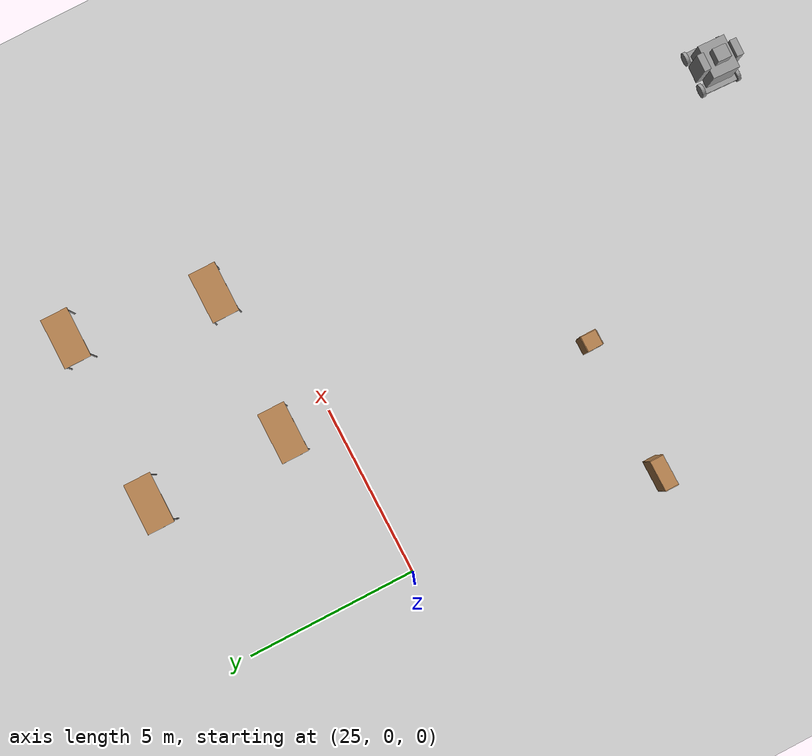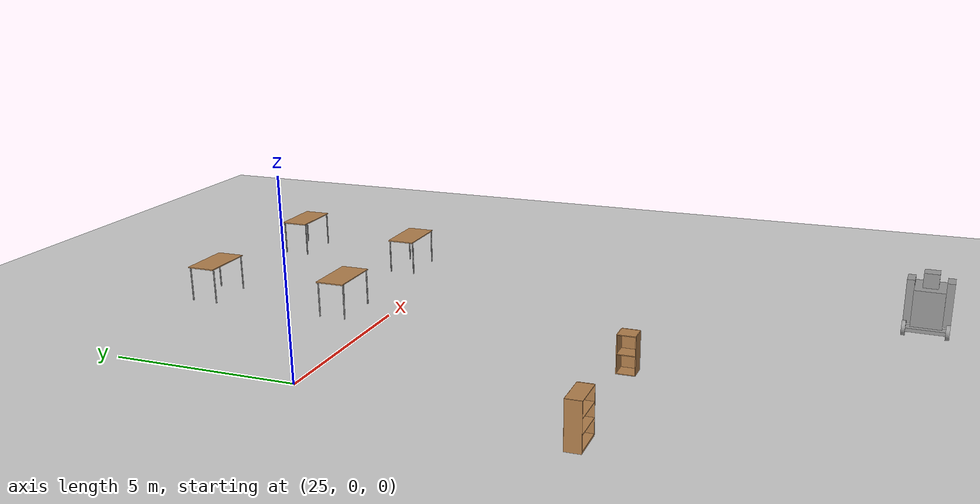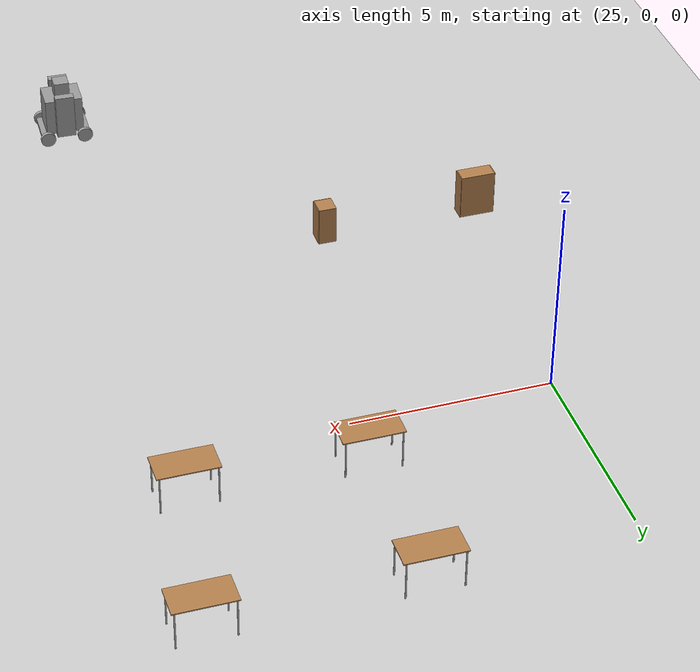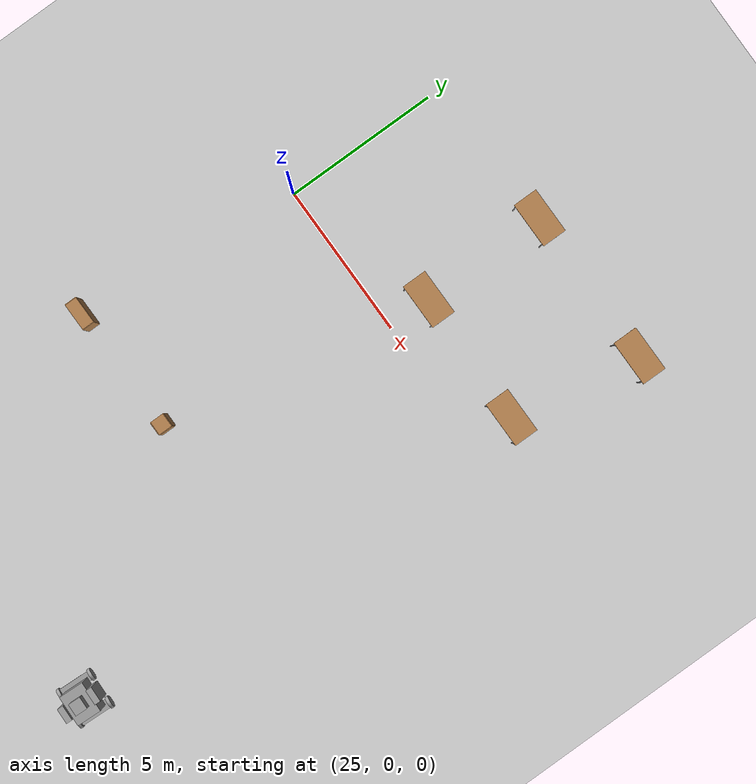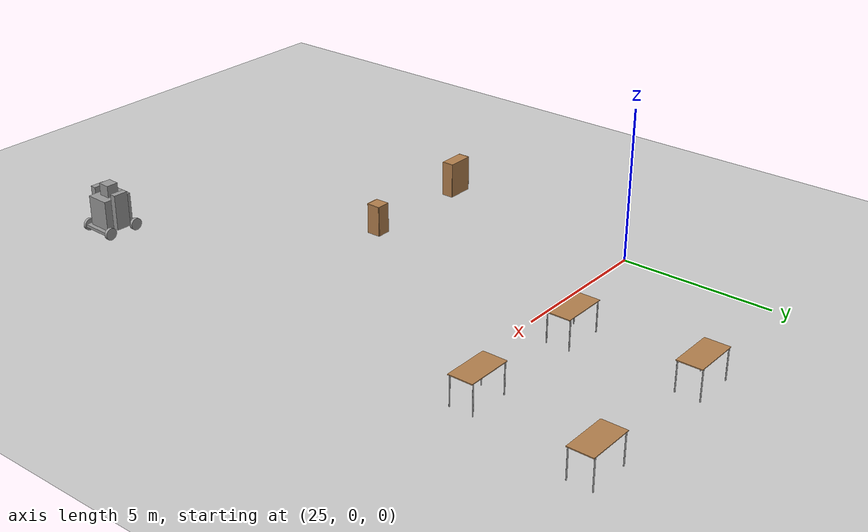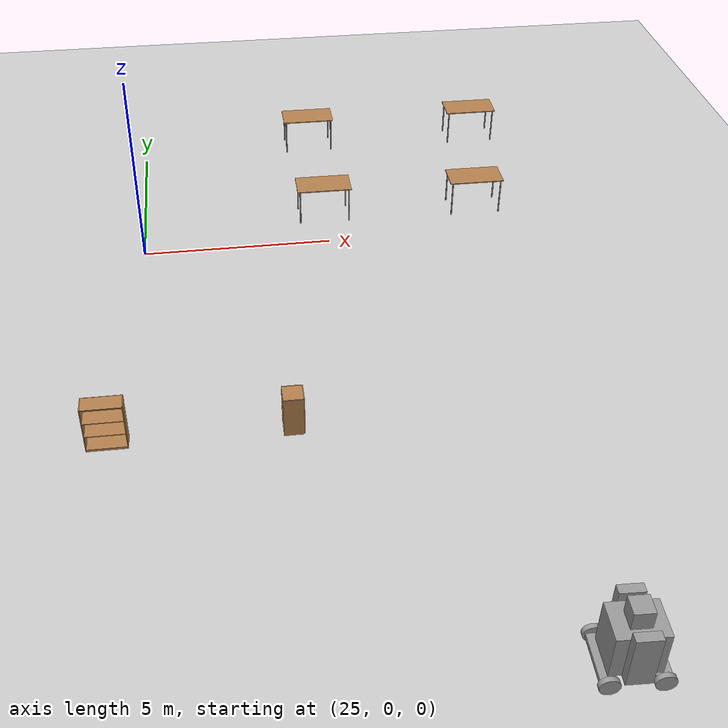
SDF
<sdf version="1.6">
 <world name="default">
  <model name="ground_plane">
   <static>1</static>
   <link name="link">
    <collision name="collision">
     <geometry><plane><normal>0 0 1</normal><size>100 100</size></plane></geometry>
     <surface>
      <contact><collide_bitmask>65535</collide_bitmask></contact>
      <friction><ode><mu>100</mu><mu2>50</mu2></ode></friction>
     </surface>
    </collision>
    <visual name="visual">
     <cast_shadows>0</cast_shadows>
     <geometry><plane><normal>0 0 1</normal><size>100 100</size></plane></geometry>
     <material>
      <script><uri>file://media/materials/scripts/gazebo.material</uri><name>Gazebo/Grey</name></script>
     </material>
    </visual>
   </link>
  </model>
  <model name="HumanoidRobot_0">
   <link name="link_0">
    <pose>-0.322222 -0.151781 0.006429 -0 -0 -0</pose>
    <inertial>
     <mass>1</mass>
     <inertia>
      <ixx>0.166667</ixx>
      <ixy>0</ixy>
      <ixz>0</ixz>
      <iyy>0.166667</iyy>
      <iyz>0</iyz>
      <izz>0.166667</izz>
     </inertia>
    </inertial>
    <visual name="visual">
     <geometry><box><size>0.3 1 0.1</size></box></geometry>
     <material>
      <lighting>1</lighting>
      <script><uri>file://media/materials/scripts/gazebo.material</uri><name>Gazebo/Grey</name></script>
      <shader type="pixel"><normal_map>__default__</normal_map></shader>
      <ambient>0.3 0.3 0.3 1</ambient>
      <diffuse>0.7 0.7 0.7 1</diffuse>
      <specular>0.01 0.01 0.01 1</specular>
      <emissive>0 0 0 1</emissive>
     </material>
    </visual>
    <collision name="collision">
     <geometry><box><size>0.3 1 0.1</size></box></geometry>
     <surface>
      <friction>
       <ode><mu>1</mu><mu2>1</mu2><fdir1>0 0 0</fdir1><slip1>0</slip1><slip2>0</slip2></ode>
       <torsional>
        <coefficient>1</coefficient>
        <patch_radius>0</patch_radius>
        <surface_radius>0</surface_radius>
        <use_patch_radius>1</use_patch_radius>
        <ode><slip>0</slip></ode>
       </torsional>
      </friction>
      <bounce><restitution_coefficient>0</restitution_coefficient><threshold>1e+06</threshold></bounce>
      <contact>
       <collide_without_contact>0</collide_without_contact>
       <collide_without_contact_bitmask>1</collide_without_contact_bitmask>
       <collide_bitmask>1</collide_bitmask>
       <ode>
        <soft_cfm>0</soft_cfm>
        <soft_erp>0.2</soft_erp>
        <kp>1e+13</kp>
        <kd>1</kd>
        <max_vel>0.01</max_vel>
        <min_depth>0</min_depth>
       </ode>
       <bullet>
        <split_impulse>1</split_impulse>
        <split_impulse_penetration_threshold>-0.01</split_impulse_penetration_threshold>
        <soft_cfm>0</soft_cfm>
        <soft_erp>0.2</soft_erp>
        <kp>1e+13</kp>
        <kd>1</kd>
       </bullet>
      </contact>
     </surface>
    </collision>
   </link>
   <link name="link_0_clone">
    <pose>0.677778 -0.151781 0.006429 -0 -0 -0</pose>
    <inertial>
     <mass>1</mass>
     <inertia>
      <ixx>0.166667</ixx>
      <ixy>0</ixy>
      <ixz>0</ixz>
      <iyy>0.166667</iyy>
      <iyz>0</iyz>
      <izz>0.166667</izz>
     </inertia>
    </inertial>
    <visual name="visual">
     <geometry><box><size>0.3 1 0.1</size></box></geometry>
     <material>
      <lighting>1</lighting>
      <script><uri>file://media/materials/scripts/gazebo.material</uri><name>Gazebo/Grey</name></script>
      <shader type="pixel"><normal_map>__default__</normal_map></shader>
      <ambient>0.3 0.3 0.3 1</ambient>
      <diffuse>0.7 0.7 0.7 1</diffuse>
      <specular>0.01 0.01 0.01 1</specular>
      <emissive>0 0 0 1</emissive>
     </material>
    </visual>
    <collision name="collision">
     <geometry><box><size>0.3 1 0.1</size></box></geometry>
     <surface>
      <friction>
       <ode><mu>1</mu><mu2>1</mu2><fdir1>0 0 0</fdir1><slip1>0</slip1><slip2>0</slip2></ode>
       <torsional>
        <coefficient>1</coefficient>
        <patch_radius>0</patch_radius>
        <surface_radius>0</surface_radius>
        <use_patch_radius>1</use_patch_radius>
        <ode><slip>0</slip></ode>
       </torsional>
      </friction>
      <bounce><restitution_coefficient>0</restitution_coefficient><threshold>1e+06</threshold></bounce>
      <contact>
       <collide_without_contact>0</collide_without_contact>
       <collide_without_contact_bitmask>1</collide_without_contact_bitmask>
       <collide_bitmask>1</collide_bitmask>
       <ode>
        <soft_cfm>0</soft_cfm>
        <soft_erp>0.2</soft_erp>
        <kp>1e+13</kp>
        <kd>1</kd>
        <max_vel>0.01</max_vel>
        <min_depth>0</min_depth>
       </ode>
       <bullet>
        <split_impulse>1</split_impulse>
        <split_impulse_penetration_threshold>-0.01</split_impulse_penetration_threshold>
        <soft_cfm>0</soft_cfm>
        <soft_erp>0.2</soft_erp>
        <kp>1e+13</kp>
        <kd>1</kd>
       </bullet>
      </contact>
     </surface>
    </collision>
   </link>
   <link name="link_1">
    <pose>-0.322222 -0.7018 0.006429 1.5707 -0 0</pose>
    <inertial>
     <mass>1</mass>
     <inertia><ixx>0.145833</ixx><ixy>0</ixy><ixz>0</ixz><iyy>0.145833</iyy><iyz>0</iyz><izz>0.125</izz></inertia>
    </inertial>
    <visual name="visual">
     <geometry><cylinder><radius>0.2</radius><length>0.1</length></cylinder></geometry>
     <material>
      <lighting>1</lighting>
      <script><uri>file://media/materials/scripts/gazebo.material</uri><name>Gazebo/Grey</name></script>
      <shader type="pixel"><normal_map>__default__</normal_map></shader>
      <ambient>0.3 0.3 0.3 1</ambient>
      <diffuse>0.7 0.7 0.7 1</diffuse>
      <specular>0.01 0.01 0.01 1</specular>
      <emissive>0 0 0 1</emissive>
     </material>
    </visual>
    <collision name="collision">
     <geometry><cylinder><radius>0.2</radius><length>0.1</length></cylinder></geometry>
     <surface>
      <friction>
       <ode><mu>1</mu><mu2>1</mu2><fdir1>0 0 0</fdir1><slip1>0</slip1><slip2>0</slip2></ode>
       <torsional>
        <coefficient>1</coefficient>
        <patch_radius>0</patch_radius>
        <surface_radius>0</surface_radius>
        <use_patch_radius>1</use_patch_radius>
        <ode><slip>0</slip></ode>
       </torsional>
      </friction>
      <bounce><restitution_coefficient>0</restitution_coefficient><threshold>1e+06</threshold></bounce>
      <contact>
       <collide_without_contact>0</collide_without_contact>
       <collide_without_contact_bitmask>1</collide_without_contact_bitmask>
       <collide_bitmask>1</collide_bitmask>
       <ode>
        <soft_cfm>0</soft_cfm>
        <soft_erp>0.2</soft_erp>
        <kp>1e+13</kp>
        <kd>1</kd>
        <max_vel>0.01</max_vel>
        <min_depth>0</min_depth>
       </ode>
       <bullet>
        <split_impulse>1</split_impulse>
        <split_impulse_penetration_threshold>-0.01</split_impulse_penetration_threshold>
        <soft_cfm>0</soft_cfm>
        <soft_erp>0.2</soft_erp>
        <kp>1e+13</kp>
        <kd>1</kd>
       </bullet>
      </contact>
     </surface>
    </collision>
   </link>
   <link name="link_1_clone">
    <pose>-0.322222 0.398238 0.006429 1.5707 -0 0</pose>
    <inertial>
     <mass>1</mass>
     <inertia><ixx>0.145833</ixx><ixy>0</ixy><ixz>0</ixz><iyy>0.145833</iyy><iyz>0</iyz><izz>0.125</izz></inertia>
    </inertial>
    <visual name="visual">
     <geometry><cylinder><radius>0.2</radius><length>0.1</length></cylinder></geometry>
     <material>
      <lighting>1</lighting>
      <script><uri>file://media/materials/scripts/gazebo.material</uri><name>Gazebo/Grey</name></script>
      <shader type="pixel"><normal_map>__default__</normal_map></shader>
      <ambient>0.3 0.3 0.3 1</ambient>
      <diffuse>0.7 0.7 0.7 1</diffuse>
      <specular>0.01 0.01 0.01 1</specular>
      <emissive>0 0 0 1</emissive>
     </material>
    </visual>
    <collision name="collision">
     <geometry><cylinder><radius>0.2</radius><length>0.1</length></cylinder></geometry>
     <surface>
      <friction>
       <ode><mu>1</mu><mu2>1</mu2><fdir1>0 0 0</fdir1><slip1>0</slip1><slip2>0</slip2></ode>
       <torsional>
        <coefficient>1</coefficient>
        <patch_radius>0</patch_radius>
        <surface_radius>0</surface_radius>
        <use_patch_radius>1</use_patch_radius>
        <ode><slip>0</slip></ode>
       </torsional>
      </friction>
      <bounce><restitution_coefficient>0</restitution_coefficient><threshold>1e+06</threshold></bounce>
      <contact>
       <collide_without_contact>0</collide_without_contact>
       <collide_without_contact_bitmask>1</collide_without_contact_bitmask>
       <collide_bitmask>1</collide_bitmask>
       <ode>
        <soft_cfm>0</soft_cfm>
        <soft_erp>0.2</soft_erp>
        <kp>1e+13</kp>
        <kd>1</kd>
        <max_vel>0.01</max_vel>
        <min_depth>0</min_depth>
       </ode>
       <bullet>
        <split_impulse>1</split_impulse>
        <split_impulse_penetration_threshold>-0.01</split_impulse_penetration_threshold>
        <soft_cfm>0</soft_cfm>
        <soft_erp>0.2</soft_erp>
        <kp>1e+13</kp>
        <kd>1</kd>
       </bullet>
      </contact>
     </surface>
    </collision>
   </link>
   <link name="link_1_clone_0">
    <pose>0.677778 0.398238 0.006429 1.5707 -0 0</pose>
    <inertial>
     <mass>1</mass>
     <inertia><ixx>0.145833</ixx><ixy>0</ixy><ixz>0</ixz><iyy>0.145833</iyy><iyz>0</iyz><izz>0.125</izz></inertia>
    </inertial>
    <visual name="visual">
     <geometry><cylinder><radius>0.2</radius><length>0.1</length></cylinder></geometry>
     <material>
      <lighting>1</lighting>
      <script><uri>file://media/materials/scripts/gazebo.material</uri><name>Gazebo/Grey</name></script>
      <shader type="pixel"><normal_map>__default__</normal_map></shader>
      <ambient>0.3 0.3 0.3 1</ambient>
      <diffuse>0.7 0.7 0.7 1</diffuse>
      <specular>0.01 0.01 0.01 1</specular>
      <emissive>0 0 0 1</emissive>
     </material>
    </visual>
    <collision name="collision">
     <geometry><cylinder><radius>0.2</radius><length>0.1</length></cylinder></geometry>
     <surface>
      <friction>
       <ode><mu>1</mu><mu2>1</mu2><fdir1>0 0 0</fdir1><slip1>0</slip1><slip2>0</slip2></ode>
       <torsional>
        <coefficient>1</coefficient>
        <patch_radius>0</patch_radius>
        <surface_radius>0</surface_radius>
        <use_patch_radius>1</use_patch_radius>
        <ode><slip>0</slip></ode>
       </torsional>
      </friction>
      <bounce><restitution_coefficient>0</restitution_coefficient><threshold>1e+06</threshold></bounce>
      <contact>
       <collide_without_contact>0</collide_without_contact>
       <collide_without_contact_bitmask>1</collide_without_contact_bitmask>
       <collide_bitmask>1</collide_bitmask>
       <ode>
        <soft_cfm>0</soft_cfm>
        <soft_erp>0.2</soft_erp>
        <kp>1e+13</kp>
        <kd>1</kd>
        <max_vel>0.01</max_vel>
        <min_depth>0</min_depth>
       </ode>
       <bullet>
        <split_impulse>1</split_impulse>
        <split_impulse_penetration_threshold>-0.01</split_impulse_penetration_threshold>
        <soft_cfm>0</soft_cfm>
        <soft_erp>0.2</soft_erp>
        <kp>1e+13</kp>
        <kd>1</kd>
       </bullet>
      </contact>
     </surface>
    </collision>
   </link>
   <link name="link_1_clone_1">
    <pose>0.677778 -0.7018 0.006429 1.5707 -0 0</pose>
    <inertial>
     <mass>1</mass>
     <inertia><ixx>0.145833</ixx><ixy>0</ixy><ixz>0</ixz><iyy>0.145833</iyy><iyz>0</iyz><izz>0.125</izz></inertia>
    </inertial>
    <visual name="visual">
     <geometry><cylinder><radius>0.2</radius><length>0.1</length></cylinder></geometry>
     <material>
      <lighting>1</lighting>
      <script><uri>file://media/materials/scripts/gazebo.material</uri><name>Gazebo/Grey</name></script>
      <shader type="pixel"><normal_map>__default__</normal_map></shader>
      <ambient>0.3 0.3 0.3 1</ambient>
      <diffuse>0.7 0.7 0.7 1</diffuse>
      <specular>0.01 0.01 0.01 1</specular>
      <emissive>0 0 0 1</emissive>
     </material>
    </visual>
    <collision name="collision">
     <geometry><cylinder><radius>0.2</radius><length>0.1</length></cylinder></geometry>
     <surface>
      <friction>
       <ode><mu>1</mu><mu2>1</mu2><fdir1>0 0 0</fdir1><slip1>0</slip1><slip2>0</slip2></ode>
       <torsional>
        <coefficient>1</coefficient>
        <patch_radius>0</patch_radius>
        <surface_radius>0</surface_radius>
        <use_patch_radius>1</use_patch_radius>
        <ode><slip>0</slip></ode>
       </torsional>
      </friction>
      <bounce><restitution_coefficient>0</restitution_coefficient><threshold>1e+06</threshold></bounce>
      <contact>
       <collide_without_contact>0</collide_without_contact>
       <collide_without_contact_bitmask>1</collide_without_contact_bitmask>
       <collide_bitmask>1</collide_bitmask>
       <ode>
        <soft_cfm>0</soft_cfm>
        <soft_erp>0.2</soft_erp>
        <kp>1e+13</kp>
        <kd>1</kd>
        <max_vel>0.01</max_vel>
        <min_depth>0</min_depth>
       </ode>
       <bullet>
        <split_impulse>1</split_impulse>
        <split_impulse_penetration_threshold>-0.01</split_impulse_penetration_threshold>
        <soft_cfm>0</soft_cfm>
        <soft_erp>0.2</soft_erp>
        <kp>1e+13</kp>
        <kd>1</kd>
       </bullet>
      </contact>
     </surface>
    </collision>
   </link>
   <link name="link_2">
    <pose>0.177778 -0.151781 0.556429 -0 -0 -0</pose>
    <inertial>
     <mass>1</mass>
     <inertia>
      <ixx>0.166667</ixx>
      <ixy>0</ixy>
      <ixz>0</ixz>
      <iyy>0.166667</iyy>
      <iyz>0</iyz>
      <izz>0.166667</izz>
     </inertia>
    </inertial>
    <visual name="visual">
     <geometry><box><size>1 0.8 1</size></box></geometry>
     <material>
      <lighting>1</lighting>
      <script><uri>file://media/materials/scripts/gazebo.material</uri><name>Gazebo/Grey</name></script>
      <shader type="pixel"><normal_map>__default__</normal_map></shader>
      <ambient>0.3 0.3 0.3 1</ambient>
      <diffuse>0.7 0.7 0.7 1</diffuse>
      <specular>0.01 0.01 0.01 1</specular>
      <emissive>0 0 0 1</emissive>
     </material>
    </visual>
    <collision name="collision">
     <geometry><box><size>1 0.8 1</size></box></geometry>
     <surface>
      <friction>
       <ode><mu>1</mu><mu2>1</mu2><fdir1>0 0 0</fdir1><slip1>0</slip1><slip2>0</slip2></ode>
       <torsional>
        <coefficient>1</coefficient>
        <patch_radius>0</patch_radius>
        <surface_radius>0</surface_radius>
        <use_patch_radius>1</use_patch_radius>
        <ode><slip>0</slip></ode>
       </torsional>
      </friction>
      <bounce><restitution_coefficient>0</restitution_coefficient><threshold>1e+06</threshold></bounce>
      <contact>
       <collide_without_contact>0</collide_without_contact>
       <collide_without_contact_bitmask>1</collide_without_contact_bitmask>
       <collide_bitmask>1</collide_bitmask>
       <ode>
        <soft_cfm>0</soft_cfm>
        <soft_erp>0.2</soft_erp>
        <kp>1e+13</kp>
        <kd>1</kd>
        <max_vel>0.01</max_vel>
        <min_depth>0</min_depth>
       </ode>
       <bullet>
        <split_impulse>1</split_impulse>
        <split_impulse_penetration_threshold>-0.01</split_impulse_penetration_threshold>
        <soft_cfm>0</soft_cfm>
        <soft_erp>0.2</soft_erp>
        <kp>1e+13</kp>
        <kd>1</kd>
       </bullet>
      </contact>
     </surface>
    </collision>
   </link>
   <link name="link_3">
    <pose>0.177778 0.348219 0.656429 -0 -0 -0</pose>
    <inertial>
     <mass>1</mass>
     <inertia>
      <ixx>0.166667</ixx>
      <ixy>0</ixy>
      <ixz>0</ixz>
      <iyy>0.166667</iyy>
      <iyz>0</iyz>
      <izz>0.166667</izz>
     </inertia>
    </inertial>
    <visual name="visual">
     <geometry><box><size>0.5 0.2 1.2</size></box></geometry>
     <material>
      <lighting>1</lighting>
      <script><uri>file://media/materials/scripts/gazebo.material</uri><name>Gazebo/Grey</name></script>
      <shader type="pixel"><normal_map>__default__</normal_map></shader>
      <ambient>0.3 0.3 0.3 1</ambient>
      <diffuse>0.7 0.7 0.7 1</diffuse>
      <specular>0.01 0.01 0.01 1</specular>
      <emissive>0 0 0 1</emissive>
     </material>
    </visual>
    <collision name="collision">
     <geometry><box><size>0.5 0.2 1.2</size></box></geometry>
     <surface>
      <friction>
       <ode><mu>1</mu><mu2>1</mu2><fdir1>0 0 0</fdir1><slip1>0</slip1><slip2>0</slip2></ode>
       <torsional>
        <coefficient>1</coefficient>
        <patch_radius>0</patch_radius>
        <surface_radius>0</surface_radius>
        <use_patch_radius>1</use_patch_radius>
        <ode><slip>0</slip></ode>
       </torsional>
      </friction>
      <bounce><restitution_coefficient>0</restitution_coefficient><threshold>1e+06</threshold></bounce>
      <contact>
       <collide_without_contact>0</collide_without_contact>
       <collide_without_contact_bitmask>1</collide_without_contact_bitmask>
       <collide_bitmask>1</collide_bitmask>
       <ode>
        <soft_cfm>0</soft_cfm>
        <soft_erp>0.2</soft_erp>
        <kp>1e+13</kp>
        <kd>1</kd>
        <max_vel>0.01</max_vel>
        <min_depth>0</min_depth>
       </ode>
       <bullet>
        <split_impulse>1</split_impulse>
        <split_impulse_penetration_threshold>-0.01</split_impulse_penetration_threshold>
        <soft_cfm>0</soft_cfm>
        <soft_erp>0.2</soft_erp>
        <kp>1e+13</kp>
        <kd>1</kd>
       </bullet>
      </contact>
     </surface>
    </collision>
   </link>
   <link name="link_3_clone">
    <pose>0.177778 -0.651781 0.65643 -0 -0 -0</pose>
    <inertial>
     <mass>1</mass>
     <inertia>
      <ixx>0.166667</ixx>
      <ixy>0</ixy>
      <ixz>0</ixz>
      <iyy>0.166667</iyy>
      <iyz>0</iyz>
      <izz>0.166667</izz>
     </inertia>
    </inertial>
    <visual name="visual">
     <geometry><box><size>0.5 0.2 1.2</size></box></geometry>
     <material>
      <lighting>1</lighting>
      <script><uri>file://media/materials/scripts/gazebo.material</uri><name>Gazebo/Grey</name></script>
      <shader type="pixel"><normal_map>__default__</normal_map></shader>
      <ambient>0.3 0.3 0.3 1</ambient>
      <diffuse>0.7 0.7 0.7 1</diffuse>
      <specular>0.01 0.01 0.01 1</specular>
      <emissive>0 0 0 1</emissive>
     </material>
    </visual>
    <collision name="collision">
     <geometry><box><size>0.5 0.2 1.2</size></box></geometry>
     <surface>
      <friction>
       <ode><mu>1</mu><mu2>1</mu2><fdir1>0 0 0</fdir1><slip1>0</slip1><slip2>0</slip2></ode>
       <torsional>
        <coefficient>1</coefficient>
        <patch_radius>0</patch_radius>
        <surface_radius>0</surface_radius>
        <use_patch_radius>1</use_patch_radius>
        <ode><slip>0</slip></ode>
       </torsional>
      </friction>
      <bounce><restitution_coefficient>0</restitution_coefficient><threshold>1e+06</threshold></bounce>
      <contact>
       <collide_without_contact>0</collide_without_contact>
       <collide_without_contact_bitmask>1</collide_without_contact_bitmask>
       <collide_bitmask>1</collide_bitmask>
       <ode>
        <soft_cfm>0</soft_cfm>
        <soft_erp>0.2</soft_erp>
        <kp>1e+13</kp>
        <kd>1</kd>
        <max_vel>0.01</max_vel>
        <min_depth>0</min_depth>
       </ode>
       <bullet>
        <split_impulse>1</split_impulse>
        <split_impulse_penetration_threshold>-0.01</split_impulse_penetration_threshold>
        <soft_cfm>0</soft_cfm>
        <soft_erp>0.2</soft_erp>
        <kp>1e+13</kp>
        <kd>1</kd>
       </bullet>
      </contact>
     </surface>
    </collision>
   </link>
   <link name="link_4">
    <pose>0.177778 -0.151781 1.25643 -0 -0 -0</pose>
    <inertial>
     <mass>1</mass>
     <inertia>
      <ixx>0.166667</ixx>
      <ixy>0</ixy>
      <ixz>0</ixz>
      <iyy>0.166667</iyy>
      <iyz>0</iyz>
      <izz>0.166667</izz>
     </inertia>
    </inertial>
    <visual name="visual">
     <geometry><box><size>0.4 0.4 0.4</size></box></geometry>
     <material>
      <lighting>1</lighting>
      <script><uri>file://media/materials/scripts/gazebo.material</uri><name>Gazebo/Grey</name></script>
      <shader type="pixel"><normal_map>__default__</normal_map></shader>
      <ambient>0.3 0.3 0.3 1</ambient>
      <diffuse>0.7 0.7 0.7 1</diffuse>
      <specular>0.01 0.01 0.01 1</specular>
      <emissive>0 0 0 1</emissive>
     </material>
    </visual>
    <collision name="collision">
     <geometry><box><size>0.4 0.4 0.4</size></box></geometry>
     <surface>
      <friction>
       <ode><mu>1</mu><mu2>1</mu2><fdir1>0 0 0</fdir1><slip1>0</slip1><slip2>0</slip2></ode>
       <torsional>
        <coefficient>1</coefficient>
        <patch_radius>0</patch_radius>
        <surface_radius>0</surface_radius>
        <use_patch_radius>1</use_patch_radius>
        <ode><slip>0</slip></ode>
       </torsional>
      </friction>
      <bounce><restitution_coefficient>0</restitution_coefficient><threshold>1e+06</threshold></bounce>
      <contact>
       <collide_without_contact>0</collide_without_contact>
       <collide_without_contact_bitmask>1</collide_without_contact_bitmask>
       <collide_bitmask>1</collide_bitmask>
       <ode>
        <soft_cfm>0</soft_cfm>
        <soft_erp>0.2</soft_erp>
        <kp>1e+13</kp>
        <kd>1</kd>
        <max_vel>0.01</max_vel>
        <min_depth>0</min_depth>
       </ode>
       <bullet>
        <split_impulse>1</split_impulse>
        <split_impulse_penetration_threshold>-0.01</split_impulse_penetration_threshold>
        <soft_cfm>0</soft_cfm>
        <soft_erp>0.2</soft_erp>
        <kp>1e+13</kp>
        <kd>1</kd>
       </bullet>
      </contact>
     </surface>
    </collision>
   </link>
   <joint name="link_0_JOINT_2" type="revolute">
    <parent>link_0</parent>
    <child>link_1</child>
    <axis>
     <xyz>0 0 1</xyz>
     <use_parent_model_frame>0</use_parent_model_frame>
     <limit>
      <lower>-1.79769e+308</lower>
      <upper>1.79769e+308</upper>
      <effort>-1</effort>
      <velocity>-1</velocity>
     </limit>
     <dynamics>
      <spring_reference>0</spring_reference>
      <spring_stiffness>0</spring_stiffness>
      <damping>0</damping>
      <friction>0</friction>
     </dynamics>
    </axis>
    <physics>
     <ode><limit><cfm>0</cfm><erp>0.2</erp></limit><suspension><cfm>0</cfm><erp>0.2</erp></suspension></ode>
    </physics>
   </joint>
   <joint name="link_0_JOINT_3" type="revolute">
    <parent>link_0</parent>
    <child>link_1_clone</child>
    <axis>
     <xyz>1 0 0</xyz>
     <use_parent_model_frame>0</use_parent_model_frame>
     <limit>
      <lower>-1.79769e+308</lower>
      <upper>1.79769e+308</upper>
      <effort>-1</effort>
      <velocity>-1</velocity>
     </limit>
     <dynamics>
      <spring_reference>0</spring_reference>
      <spring_stiffness>0</spring_stiffness>
      <damping>0</damping>
      <friction>0</friction>
     </dynamics>
    </axis>
    <physics>
     <ode><limit><cfm>0</cfm><erp>0.2</erp></limit><suspension><cfm>0</cfm><erp>0.2</erp></suspension></ode>
    </physics>
   </joint>
   <joint name="link_0_clone_JOINT_4" type="revolute">
    <parent>link_0_clone</parent>
    <child>link_1_clone_0</child>
    <axis>
     <xyz>1 0 0</xyz>
     <use_parent_model_frame>0</use_parent_model_frame>
     <limit>
      <lower>-1.79769e+308</lower>
      <upper>1.79769e+308</upper>
      <effort>-1</effort>
      <velocity>-1</velocity>
     </limit>
     <dynamics>
      <spring_reference>0</spring_reference>
      <spring_stiffness>0</spring_stiffness>
      <damping>0</damping>
      <friction>0</friction>
     </dynamics>
    </axis>
    <physics>
     <ode><limit><cfm>0</cfm><erp>0.2</erp></limit><suspension><cfm>0</cfm><erp>0.2</erp></suspension></ode>
    </physics>
   </joint>
   <joint name="link_0_clone_JOINT_5" type="revolute">
    <parent>link_0_clone</parent>
    <child>link_1_clone_1</child>
    <axis>
     <xyz>1 0 0</xyz>
     <use_parent_model_frame>0</use_parent_model_frame>
     <limit>
      <lower>-1.79769e+308</lower>
      <upper>1.79769e+308</upper>
      <effort>-1</effort>
      <velocity>-1</velocity>
     </limit>
     <dynamics>
      <spring_reference>0</spring_reference>
      <spring_stiffness>0</spring_stiffness>
      <damping>0</damping>
      <friction>0</friction>
     </dynamics>
    </axis>
    <physics>
     <ode><limit><cfm>0</cfm><erp>0.2</erp></limit><suspension><cfm>0</cfm><erp>0.2</erp></suspension></ode>
    </physics>
   </joint>
   <joint name="link_2_JOINT_10" type="revolute">
    <parent>link_2</parent>
    <child>link_4</child>
    <axis>
     <xyz>0 0 1</xyz>
     <use_parent_model_frame>0</use_parent_model_frame>
     <limit>
      <lower>-1.79769e+308</lower>
      <upper>1.79769e+308</upper>
      <effort>-1</effort>
      <velocity>-1</velocity>
     </limit>
     <dynamics>
      <spring_reference>0</spring_reference>
      <spring_stiffness>0</spring_stiffness>
      <damping>0</damping>
      <friction>0</friction>
     </dynamics>
    </axis>
    <physics>
     <ode><limit><cfm>0</cfm><erp>0.2</erp></limit><suspension><cfm>0</cfm><erp>0.2</erp></suspension></ode>
    </physics>
   </joint>
   <joint name="link_2_JOINT_6" type="fixed">
    <parent>link_2</parent>
    <child>link_0</child>
    <physics>
     <ode><limit><cfm>0</cfm><erp>0.2</erp></limit><suspension><cfm>0</cfm><erp>0.2</erp></suspension></ode>
    </physics>
   </joint>
   <joint name="link_2_JOINT_7" type="fixed">
    <parent>link_2</parent>
    <child>link_0_clone</child>
    <physics>
     <ode><limit><cfm>0</cfm><erp>0.2</erp></limit><suspension><cfm>0</cfm><erp>0.2</erp></suspension></ode>
    </physics>
   </joint>
   <joint name="link_2_JOINT_8" type="fixed">
    <parent>link_2</parent>
    <child>link_3</child>
    <physics>
     <ode><limit><cfm>0</cfm><erp>0.2</erp></limit><suspension><cfm>0</cfm><erp>0.2</erp></suspension></ode>
    </physics>
   </joint>
   <joint name="link_2_JOINT_9" type="fixed">
    <parent>link_2</parent>
    <child>link_3_clone</child>
    <physics>
     <ode><limit><cfm>0</cfm><erp>0.2</erp></limit><suspension><cfm>0</cfm><erp>0.2</erp></suspension></ode>
    </physics>
   </joint>
   <static>0</static>
   <pose>33.4679 -13.8443 0.193574 -9e-06 -1e-05 -0.040379</pose>
  </model>
  <model name="table">
   <static>1</static>
   <link name="link">
    <collision name="surface">
     <pose>0 0 1 0 -0 0</pose>
     <geometry><box><size>1.5 0.8 0.03</size></box></geometry>
     <surface><friction><ode><mu>0.6</mu><mu2>0.6</mu2></ode></friction></surface>
    </collision>
    <visual name="visual1">
     <pose>0 0 1 0 -0 0</pose>
     <geometry><box><size>1.5 0.8 0.03</size></box></geometry>
     <material>
      <script><uri>file://media/materials/scripts/gazebo.material</uri><name>Gazebo/Wood</name></script>
     </material>
    </visual>
    <collision name="front_left_leg">
     <pose>0.68 0.38 0.5 0 -0 0</pose>
     <geometry><cylinder><radius>0.02</radius><length>1</length></cylinder></geometry>
    </collision>
    <visual name="front_left_leg">
     <pose>0.68 0.38 0.5 0 -0 0</pose>
     <geometry><cylinder><radius>0.02</radius><length>1</length></cylinder></geometry>
     <material>
      <script><uri>file://media/materials/scripts/gazebo.material</uri><name>Gazebo/Grey</name></script>
     </material>
    </visual>
    <collision name="front_right_leg">
     <pose>0.68 -0.38 0.5 0 -0 0</pose>
     <geometry><cylinder><radius>0.02</radius><length>1</length></cylinder></geometry>
    </collision>
    <visual name="front_right_leg">
     <pose>0.68 -0.38 0.5 0 -0 0</pose>
     <geometry><cylinder><radius>0.02</radius><length>1</length></cylinder></geometry>
     <material>
      <script><uri>file://media/materials/scripts/gazebo.material</uri><name>Gazebo/Grey</name></script>
     </material>
    </visual>
    <collision name="back_right_leg">
     <pose>-0.68 -0.38 0.5 0 -0 0</pose>
     <geometry><cylinder><radius>0.02</radius><length>1</length></cylinder></geometry>
    </collision>
    <visual name="back_right_leg">
     <pose>-0.68 -0.38 0.5 0 -0 0</pose>
     <geometry><cylinder><radius>0.02</radius><length>1</length></cylinder></geometry>
     <material>
      <script><uri>file://media/materials/scripts/gazebo.material</uri><name>Gazebo/Grey</name></script>
     </material>
    </visual>
    <collision name="back_left_leg">
     <pose>-0.68 0.38 0.5 0 -0 0</pose>
     <geometry><cylinder><radius>0.02</radius><length>1</length></cylinder></geometry>
    </collision>
    <visual name="back_left_leg">
     <pose>-0.68 0.38 0.5 0 -0 0</pose>
     <geometry><cylinder><radius>0.02</radius><length>1</length></cylinder></geometry>
     <material>
      <script><uri>file://media/materials/scripts/gazebo.material</uri><name>Gazebo/Grey</name></script>
     </material>
    </visual>
   </link>
   <pose>35.0162 5.44596 0 0 -0 0</pose>
  </model>
  <model name="table_clone">
   <static>1</static>
   <link name="link">
    <collision name="surface">
     <pose>0 0 1 0 -0 0</pose>
     <geometry><box><size>1.5 0.8 0.03</size></box></geometry>
     <surface><friction><ode><mu>0.6</mu><mu2>0.6</mu2></ode></friction></surface>
    </collision>
    <visual name="visual1">
     <pose>0 0 1 0 -0 0</pose>
     <geometry><box><size>1.5 0.8 0.03</size></box></geometry>
     <material>
      <script><uri>file://media/materials/scripts/gazebo.material</uri><name>Gazebo/Wood</name></script>
     </material>
    </visual>
    <collision name="front_left_leg">
     <pose>0.68 0.38 0.5 0 -0 0</pose>
     <geometry><cylinder><radius>0.02</radius><length>1</length></cylinder></geometry>
    </collision>
    <visual name="front_left_leg">
     <pose>0.68 0.38 0.5 0 -0 0</pose>
     <geometry><cylinder><radius>0.02</radius><length>1</length></cylinder></geometry>
     <material>
      <script><uri>file://media/materials/scripts/gazebo.material</uri><name>Gazebo/Grey</name></script>
     </material>
    </visual>
    <collision name="front_right_leg">
     <pose>0.68 -0.38 0.5 0 -0 0</pose>
     <geometry><cylinder><radius>0.02</radius><length>1</length></cylinder></geometry>
    </collision>
    <visual name="front_right_leg">
     <pose>0.68 -0.38 0.5 0 -0 0</pose>
     <geometry><cylinder><radius>0.02</radius><length>1</length></cylinder></geometry>
     <material>
      <script><uri>file://media/materials/scripts/gazebo.material</uri><name>Gazebo/Grey</name></script>
     </material>
    </visual>
    <collision name="back_right_leg">
     <pose>-0.68 -0.38 0.5 0 -0 0</pose>
     <geometry><cylinder><radius>0.02</radius><length>1</length></cylinder></geometry>
    </collision>
    <visual name="back_right_leg">
     <pose>-0.68 -0.38 0.5 0 -0 0</pose>
     <geometry><cylinder><radius>0.02</radius><length>1</length></cylinder></geometry>
     <material>
      <script><uri>file://media/materials/scripts/gazebo.material</uri><name>Gazebo/Grey</name></script>
     </material>
    </visual>
    <collision name="back_left_leg">
     <pose>-0.68 0.38 0.5 0 -0 0</pose>
     <geometry><cylinder><radius>0.02</radius><length>1</length></cylinder></geometry>
    </collision>
    <visual name="back_left_leg">
     <pose>-0.68 0.38 0.5 0 -0 0</pose>
     <geometry><cylinder><radius>0.02</radius><length>1</length></cylinder></geometry>
     <material>
      <script><uri>file://media/materials/scripts/gazebo.material</uri><name>Gazebo/Grey</name></script>
     </material>
    </visual>
   </link>
   <pose>29.9641 5.4493 0 0 -0 0</pose>
  </model>
  <model name="table_clone_0">
   <static>1</static>
   <link name="link">
    <collision name="surface">
     <pose>0 0 1 0 -0 0</pose>
     <geometry><box><size>1.5 0.8 0.03</size></box></geometry>
     <surface><friction><ode><mu>0.6</mu><mu2>0.6</mu2></ode></friction></surface>
    </collision>
    <visual name="visual1">
     <pose>0 0 1 0 -0 0</pose>
     <geometry><box><size>1.5 0.8 0.03</size></box></geometry>
     <material>
      <script><uri>file://media/materials/scripts/gazebo.material</uri><name>Gazebo/Wood</name></script>
     </material>
    </visual>
    <collision name="front_left_leg">
     <pose>0.68 0.38 0.5 0 -0 0</pose>
     <geometry><cylinder><radius>0.02</radius><length>1</length></cylinder></geometry>
    </collision>
    <visual name="front_left_leg">
     <pose>0.68 0.38 0.5 0 -0 0</pose>
     <geometry><cylinder><radius>0.02</radius><length>1</length></cylinder></geometry>
     <material>
      <script><uri>file://media/materials/scripts/gazebo.material</uri><name>Gazebo/Grey</name></script>
     </material>
    </visual>
    <collision name="front_right_leg">
     <pose>0.68 -0.38 0.5 0 -0 0</pose>
     <geometry><cylinder><radius>0.02</radius><length>1</length></cylinder></geometry>
    </collision>
    <visual name="front_right_leg">
     <pose>0.68 -0.38 0.5 0 -0 0</pose>
     <geometry><cylinder><radius>0.02</radius><length>1</length></cylinder></geometry>
     <material>
      <script><uri>file://media/materials/scripts/gazebo.material</uri><name>Gazebo/Grey</name></script>
     </material>
    </visual>
    <collision name="back_right_leg">
     <pose>-0.68 -0.38 0.5 0 -0 0</pose>
     <geometry><cylinder><radius>0.02</radius><length>1</length></cylinder></geometry>
    </collision>
    <visual name="back_right_leg">
     <pose>-0.68 -0.38 0.5 0 -0 0</pose>
     <geometry><cylinder><radius>0.02</radius><length>1</length></cylinder></geometry>
     <material>
      <script><uri>file://media/materials/scripts/gazebo.material</uri><name>Gazebo/Grey</name></script>
     </material>
    </visual>
    <collision name="back_left_leg">
     <pose>-0.68 0.38 0.5 0 -0 0</pose>
     <geometry><cylinder><radius>0.02</radius><length>1</length></cylinder></geometry>
    </collision>
    <visual name="back_left_leg">
     <pose>-0.68 0.38 0.5 0 -0 0</pose>
     <geometry><cylinder><radius>0.02</radius><length>1</length></cylinder></geometry>
     <material>
      <script><uri>file://media/materials/scripts/gazebo.material</uri><name>Gazebo/Grey</name></script>
     </material>
    </visual>
   </link>
   <pose>34.2695 1.30275 0 0 -0 0</pose>
  </model>
  <model name="table_clone_1">
   <static>1</static>
   <link name="link">
    <collision name="surface">
     <pose>0 0 1 0 -0 0</pose>
     <geometry><box><size>1.5 0.8 0.03</size></box></geometry>
     <surface><friction><ode><mu>0.6</mu><mu2>0.6</mu2></ode></friction></surface>
    </collision>
    <visual name="visual1">
     <pose>0 0 1 0 -0 0</pose>
     <geometry><box><size>1.5 0.8 0.03</size></box></geometry>
     <material>
      <script><uri>file://media/materials/scripts/gazebo.material</uri><name>Gazebo/Wood</name></script>
     </material>
    </visual>
    <collision name="front_left_leg">
     <pose>0.68 0.38 0.5 0 -0 0</pose>
     <geometry><cylinder><radius>0.02</radius><length>1</length></cylinder></geometry>
    </collision>
    <visual name="front_left_leg">
     <pose>0.68 0.38 0.5 0 -0 0</pose>
     <geometry><cylinder><radius>0.02</radius><length>1</length></cylinder></geometry>
     <material>
      <script><uri>file://media/materials/scripts/gazebo.material</uri><name>Gazebo/Grey</name></script>
     </material>
    </visual>
    <collision name="front_right_leg">
     <pose>0.68 -0.38 0.5 0 -0 0</pose>
     <geometry><cylinder><radius>0.02</radius><length>1</length></cylinder></geometry>
    </collision>
    <visual name="front_right_leg">
     <pose>0.68 -0.38 0.5 0 -0 0</pose>
     <geometry><cylinder><radius>0.02</radius><length>1</length></cylinder></geometry>
     <material>
      <script><uri>file://media/materials/scripts/gazebo.material</uri><name>Gazebo/Grey</name></script>
     </material>
    </visual>
    <collision name="back_right_leg">
     <pose>-0.68 -0.38 0.5 0 -0 0</pose>
     <geometry><cylinder><radius>0.02</radius><length>1</length></cylinder></geometry>
    </collision>
    <visual name="back_right_leg">
     <pose>-0.68 -0.38 0.5 0 -0 0</pose>
     <geometry><cylinder><radius>0.02</radius><length>1</length></cylinder></geometry>
     <material>
      <script><uri>file://media/materials/scripts/gazebo.material</uri><name>Gazebo/Grey</name></script>
     </material>
    </visual>
    <collision name="back_left_leg">
     <pose>-0.68 0.38 0.5 0 -0 0</pose>
     <geometry><cylinder><radius>0.02</radius><length>1</length></cylinder></geometry>
    </collision>
    <visual name="back_left_leg">
     <pose>-0.68 0.38 0.5 0 -0 0</pose>
     <geometry><cylinder><radius>0.02</radius><length>1</length></cylinder></geometry>
     <material>
      <script><uri>file://media/materials/scripts/gazebo.material</uri><name>Gazebo/Grey</name></script>
     </material>
    </visual>
   </link>
   <pose>29.9909 1.36681 0 0 -0 0</pose>
  </model>
  <model name="cabinet_0">
   <static>1</static>
   <link name="cabinet_bottom_plate">
    <inertial>
     <pose>0 0 -1 0 -0 0</pose>
     <inertia><ixx>2.05</ixx><ixy>0</ixy><ixz>0</ixz><iyy>2.05</iyy><iyz>0</iyz><izz>2.05</izz></inertia>
     <mass>25</mass>
    </inertial>
    <collision name="cabinet_bottom_plate_geom">
     <pose>0 0 0.01 0 -0 0</pose>
     <geometry><box><size>0.45 0.45 0.02</size></box></geometry>
    </collision>
    <visual name="cabinet_bottom_plate_geom_visual">
     <pose>0 0 0.01 0 -0 0</pose>
     <geometry><box><size>0.45 0.45 0.02</size></box></geometry>
     <material>
      <script><uri>file://media/materials/scripts/gazebo.material</uri><name>Gazebo/Wood</name></script>
     </material>
    </visual>
    <collision name="cabinet_bottom_plate_geom_cabinet_back_plate">
     <pose>0.235 0 0.51 0 -0 0</pose>
     <geometry><box><size>0.02 0.45 1.02</size></box></geometry>
    </collision>
    <visual name="cabinet_bottom_plate_geom_cabinet_back_plate_visual">
     <pose>0.235 0 0.51 0 -0 0</pose>
     <geometry><box><size>0.02 0.45 1.02</size></box></geometry>
     <material>
      <script><uri>file://media/materials/scripts/gazebo.material</uri><name>Gazebo/Wood</name></script>
     </material>
    </visual>
    <collision name="cabinet_bottom_plate_geom_cabinet_left_plate">
     <pose>0 0.235 0.51 0 -0 0</pose>
     <geometry><box><size>0.45 0.02 1.02</size></box></geometry>
    </collision>
    <visual name="cabinet_bottom_plate_geom_cabinet_left_plate_visual">
     <pose>0 0.235 0.51 0 -0 0</pose>
     <geometry><box><size>0.45 0.02 1.02</size></box></geometry>
     <material>
      <script><uri>file://media/materials/scripts/gazebo.material</uri><name>Gazebo/Wood</name></script>
     </material>
    </visual>
    <collision name="cabinet_bottom_plate_geom_cabinet_middle_plate">
     <pose>0 0 0.51 0 -0 0</pose>
     <geometry><box><size>0.45 0.45 0.02</size></box></geometry>
    </collision>
    <visual name="cabinet_bottom_plate_geom_cabinet_middle_plate_visual">
     <pose>0 0 0.51 0 -0 0</pose>
     <geometry><box><size>0.45 0.45 0.02</size></box></geometry>
     <material>
      <script><uri>file://media/materials/scripts/gazebo.material</uri><name>Gazebo/Wood</name></script>
     </material>
    </visual>
    <collision name="cabinet_bottom_plate_geom_cabinet_right_plate">
     <pose>0 -0.235 0.51 0 -0 0</pose>
     <geometry><box><size>0.45 0.02 1.02</size></box></geometry>
    </collision>
    <visual name="cabinet_bottom_plate_geom_cabinet_right_plate_visual">
     <pose>0 -0.235 0.51 0 -0 0</pose>
     <geometry><box><size>0.45 0.02 1.02</size></box></geometry>
     <material>
      <script><uri>file://media/materials/scripts/gazebo.material</uri><name>Gazebo/Wood</name></script>
     </material>
    </visual>
    <collision name="cabinet_bottom_plate_geom_cabinet_top_plate">
     <pose>0 0 1.01 0 -0 0</pose>
     <geometry><box><size>0.45 0.45 0.02</size></box></geometry>
    </collision>
    <visual name="cabinet_bottom_plate_geom_cabinet_top_plate_visual">
     <pose>0 0 1.01 0 -0 0</pose>
     <geometry><box><size>0.45 0.45 0.02</size></box></geometry>
     <material>
      <script><uri>file://media/materials/scripts/gazebo.material</uri><name>Gazebo/Wood</name></script>
     </material>
    </visual>
   </link>
   <pose>28.3323 -7.23712 0 0 -0 0</pose>
  </model>
  <model name="bookshelf">
   <static>1</static>
   <link name="link">
    <inertial><mass>1</mass></inertial>
    <collision name="back">
     <pose>0 0.005 0.6 0 -0 0</pose>
     <geometry><box><size>0.9 0.01 1.2</size></box></geometry>
    </collision>
    <visual name="visual1">
     <pose>0 0.005 0.6 0 -0 0</pose>
     <geometry><box><size>0.9 0.01 1.2</size></box></geometry>
     <material>
      <script><uri>file://media/materials/scripts/gazebo.material</uri><name>Gazebo/Wood</name></script>
     </material>
    </visual>
    <collision name="left_side">
     <pose>0.45 -0.195 0.6 0 -0 0</pose>
     <geometry><box><size>0.02 0.4 1.2</size></box></geometry>
    </collision>
    <visual name="visual2">
     <pose>0.45 -0.195 0.6 0 -0 0</pose>
     <geometry><box><size>0.02 0.4 1.2</size></box></geometry>
     <material>
      <script><uri>file://media/materials/scripts/gazebo.material</uri><name>Gazebo/Wood</name></script>
     </material>
    </visual>
    <collision name="right_side">
     <pose>-0.45 -0.195 0.6 0 -0 0</pose>
     <geometry><box><size>0.02 0.4 1.2</size></box></geometry>
    </collision>
    <visual name="visual3">
     <pose>-0.45 -0.195 0.6 0 -0 0</pose>
     <geometry><box><size>0.02 0.4 1.2</size></box></geometry>
     <material>
      <script><uri>file://media/materials/scripts/gazebo.material</uri><name>Gazebo/Wood</name></script>
     </material>
    </visual>
    <collision name="bottom">
     <pose>0 -0.195 0.03 0 -0 0</pose>
     <geometry><box><size>0.88 0.4 0.06</size></box></geometry>
    </collision>
    <visual name="visual4">
     <pose>0 -0.195 0.03 0 -0 0</pose>
     <geometry><box><size>0.88 0.4 0.06</size></box></geometry>
     <material>
      <script><uri>file://media/materials/scripts/gazebo.material</uri><name>Gazebo/Wood</name></script>
     </material>
    </visual>
    <collision name="top">
     <pose>0 -0.195 1.19 0 -0 0</pose>
     <geometry><box><size>0.88 0.4 0.02</size></box></geometry>
    </collision>
    <visual name="visual5">
     <pose>0 -0.195 1.19 0 -0 0</pose>
     <geometry><box><size>0.88 0.4 0.02</size></box></geometry>
     <material>
      <script><uri>file://media/materials/scripts/gazebo.material</uri><name>Gazebo/Wood</name></script>
     </material>
    </visual>
    <collision name="low_shelf">
     <pose>0 -0.195 0.43 0 -0 0</pose>
     <geometry><box><size>0.88 0.4 0.02</size></box></geometry>
    </collision>
    <visual name="visual6">
     <pose>0 -0.195 0.43 0 -0 0</pose>
     <geometry><box><size>0.88 0.4 0.02</size></box></geometry>
     <material>
      <script><uri>file://media/materials/scripts/gazebo.material</uri><name>Gazebo/Wood</name></script>
     </material>
    </visual>
    <collision name="high_shelf">
     <pose>0 -0.195 0.8 0 -0 0</pose>
     <geometry><box><size>0.88 0.4 0.02</size></box></geometry>
    </collision>
    <visual name="visual7">
     <pose>0 -0.195 0.8 0 -0 0</pose>
     <geometry><box><size>0.88 0.4 0.02</size></box></geometry>
     <material>
      <script><uri>file://media/materials/scripts/gazebo.material</uri><name>Gazebo/Wood</name></script>
     </material>
    </visual>
   </link>
   <pose>24.2757 -7.05939 0 0 -0 0</pose>
  </model>
 </world>
</sdf>
